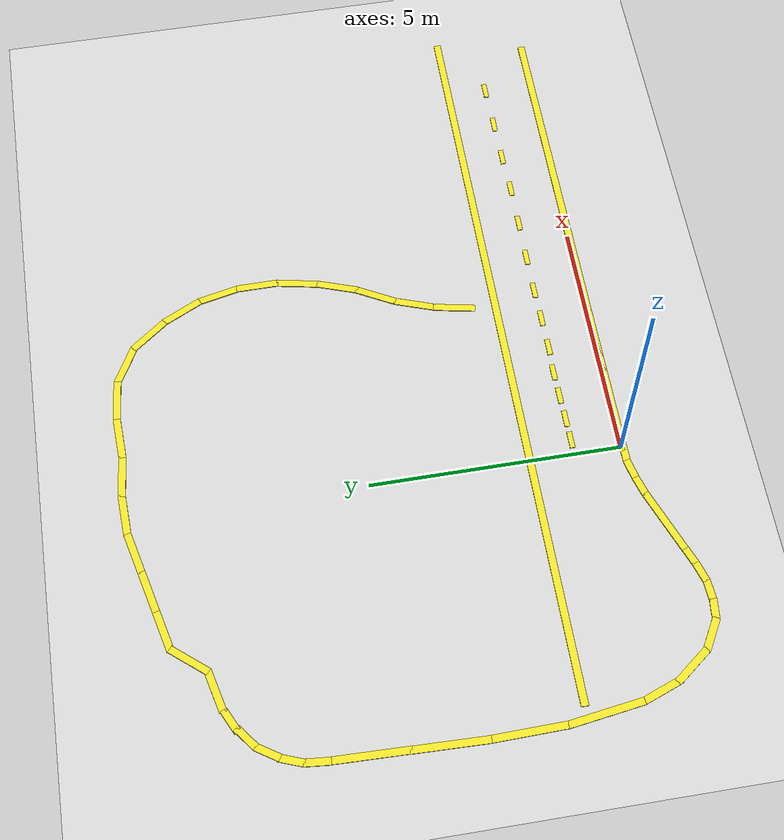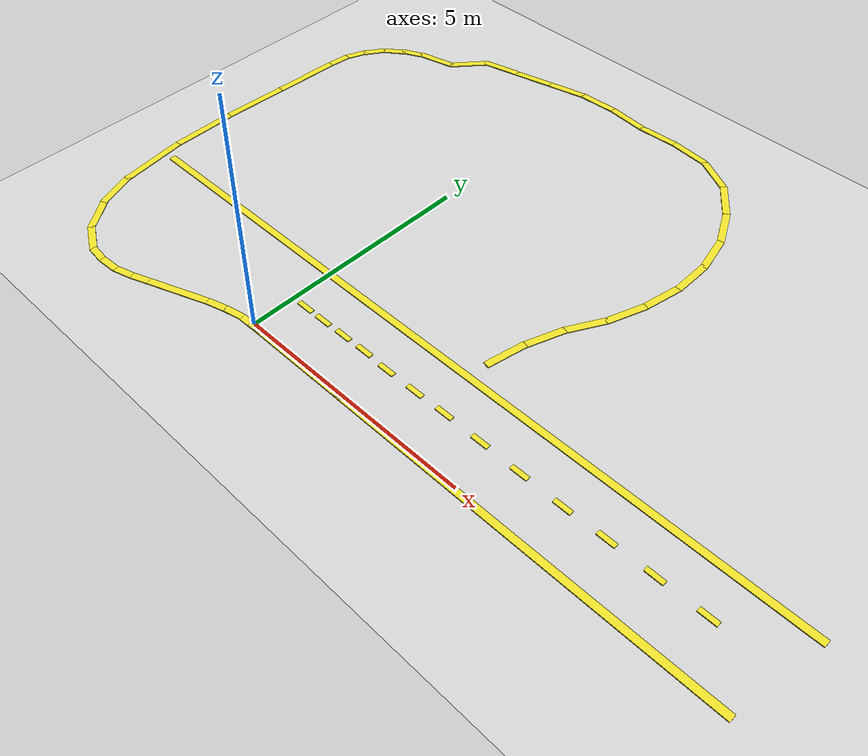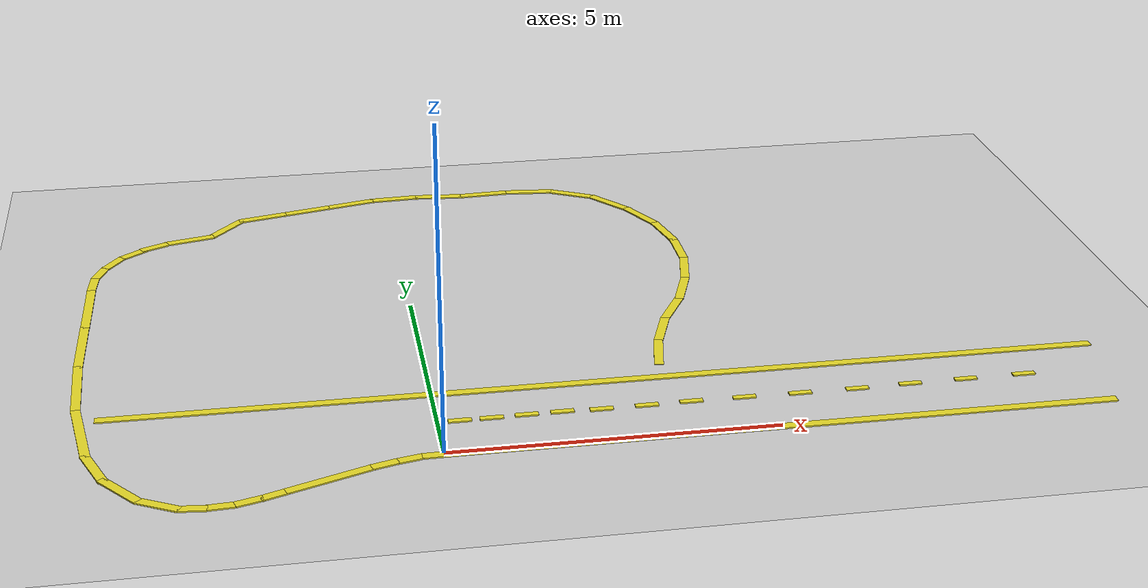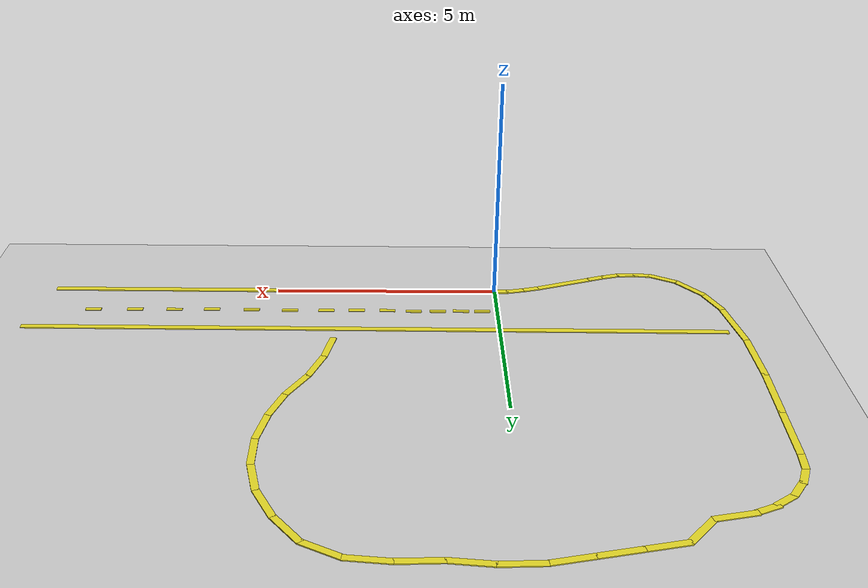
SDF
<sdf version="1.6">
 <world name="default">
  <model name="ground_plane">
   <static>1</static>
   <link name="link">
    <collision name="collision">
     <geometry><plane><normal>0 0 1</normal><size>100 100</size></plane></geometry>
     <surface>
      <contact><collide_bitmask>65535</collide_bitmask></contact>
      <friction><ode><mu>100</mu><mu2>50</mu2></ode></friction>
     </surface>
    </collision>
    <visual name="visual">
     <cast_shadows>0</cast_shadows>
     <geometry><plane><normal>0 0 1</normal><size>100 100</size></plane></geometry>
     <material>
      <script><uri>file://media/materials/scripts/gazebo.material</uri><name>Gazebo/Grey</name></script>
     </material>
    </visual>
   </link>
  </model>
  <model name="unit_box">
   <static>1</static>
   <pose>0.997641 -0.039919 4.6e-05 0 -0 0</pose>
   <link name="link">
    <gravity>0</gravity>
    <inertial>
     <mass>1</mass>
     <inertia>
      <ixx>0.166667</ixx>
      <ixy>0</ixy>
      <ixz>0</ixz>
      <iyy>0.166667</iyy>
      <iyz>0</iyz>
      <izz>0.166667</izz>
     </inertia>
    </inertial>
    <collision name="collision"><geometry><box><size>0 0 0</size></box></geometry></collision>
    <visual name="visual">
     <geometry><box><size>1.484 0.147 0.021</size></box></geometry>
     <material>
      <script><name>Gazebo/Yellow</name><uri>file://media/materials/scripts/gazebo.material</uri></script>
     </material>
    </visual>
   </link>
  </model>
  <model name="unit_box_clone">
   <static>1</static>
   <pose>2.43042 -0.038085 4.6e-05 0 -0 0</pose>
   <link name="link">
    <gravity>0</gravity>
    <inertial>
     <mass>1</mass>
     <inertia>
      <ixx>0.166667</ixx>
      <ixy>0</ixy>
      <ixz>0</ixz>
      <iyy>0.166667</iyy>
      <iyz>0</iyz>
      <izz>0.166667</izz>
     </inertia>
    </inertial>
    <collision name="collision"><geometry><box><size>0 0 0</size></box></geometry></collision>
    <visual name="visual">
     <geometry><box><size>1.484 0.147 0.021</size></box></geometry>
     <material>
      <script><name>Gazebo/Yellow</name><uri>file://media/materials/scripts/gazebo.material</uri></script>
     </material>
    </visual>
   </link>
  </model>
  <model name="unit_box_clone_clone_clone">
   <static>1</static>
   <pose>3.69131 2.65819 4.6e-05 0 0 -1.76385</pose>
   <link name="link">
    <gravity>0</gravity>
    <inertial>
     <mass>1</mass>
     <inertia>
      <ixx>0.166667</ixx>
      <ixy>0</ixy>
      <ixz>0</ixz>
      <iyy>0.166667</iyy>
      <iyz>0</iyz>
      <izz>0.166667</izz>
     </inertia>
    </inertial>
    <collision name="collision"><geometry><box><size>0 0 0</size></box></geometry></collision>
    <visual name="visual">
     <geometry><box><size>0.867362 0.147 0.021</size></box></geometry>
     <material>
      <script><name>Gazebo/Yellow</name><uri>file://media/materials/scripts/gazebo.material</uri></script>
     </material>
    </visual>
   </link>
  </model>
  <model name="unit_box_clone_clone_clone_clone">
   <static>1</static>
   <pose>3.909 3.44845 4.6e-05 0 0 -1.90739</pose>
   <link name="link">
    <gravity>0</gravity>
    <inertial>
     <mass>1</mass>
     <inertia>
      <ixx>0.166667</ixx>
      <ixy>0</ixy>
      <ixz>0</ixz>
      <iyy>0.166667</iyy>
      <iyz>0</iyz>
      <izz>0.166667</izz>
     </inertia>
    </inertial>
    <collision name="collision"><geometry><box><size>0 0 0</size></box></geometry></collision>
    <visual name="visual">
     <geometry><box><size>0.867362 0.147 0.021</size></box></geometry>
     <material>
      <script><name>Gazebo/Yellow</name><uri>file://media/materials/scripts/gazebo.material</uri></script>
     </material>
    </visual>
   </link>
  </model>
  <model name="unit_box_clone_clone_clone_clone_clone">
   <static>1</static>
   <pose>4.24694 4.20708 4.6e-05 0 0 -2.06699</pose>
   <link name="link">
    <gravity>0</gravity>
    <inertial>
     <mass>1</mass>
     <inertia>
      <ixx>0.166667</ixx>
      <ixy>0</ixy>
      <ixz>0</ixz>
      <iyy>0.166667</iyy>
      <iyz>0</iyz>
      <izz>0.166667</izz>
     </inertia>
    </inertial>
    <collision name="collision"><geometry><box><size>0 0 0</size></box></geometry></collision>
    <visual name="visual">
     <geometry><box><size>0.867362 0.147 0.021</size></box></geometry>
     <material>
      <script><name>Gazebo/Yellow</name><uri>file://media/materials/scripts/gazebo.material</uri></script>
     </material>
    </visual>
   </link>
  </model>
  <model name="unit_box_clone_clone_clone_clone_clone_0">
   <static>1</static>
   <pose>4.57975 4.95327 4.6e-05 0 0 -1.90739</pose>
   <link name="link">
    <gravity>0</gravity>
    <inertial>
     <mass>1</mass>
     <inertia>
      <ixx>0.166667</ixx>
      <ixy>0</ixy>
      <ixz>0</ixz>
      <iyy>0.166667</iyy>
      <iyz>0</iyz>
      <izz>0.166667</izz>
     </inertia>
    </inertial>
    <collision name="collision"><geometry><box><size>0 0 0</size></box></geometry></collision>
    <visual name="visual">
     <geometry><box><size>0.867362 0.147 0.021</size></box></geometry>
     <material>
      <script><name>Gazebo/Yellow</name><uri>file://media/materials/scripts/gazebo.material</uri></script>
     </material>
    </visual>
   </link>
  </model>
  <model name="unit_box_clone_clone_clone_clone_0">
   <static>1</static>
   <pose>4.798 5.76492 4.6e-05 0 0 -1.76385</pose>
   <link name="link">
    <gravity>0</gravity>
    <inertial>
     <mass>1</mass>
     <inertia>
      <ixx>0.166667</ixx>
      <ixy>0</ixy>
      <ixz>0</ixz>
      <iyy>0.166667</iyy>
      <iyz>0</iyz>
      <izz>0.166667</izz>
     </inertia>
    </inertial>
    <collision name="collision"><geometry><box><size>0 0 0</size></box></geometry></collision>
    <visual name="visual">
     <geometry><box><size>0.867362 0.147 0.021</size></box></geometry>
     <material>
      <script><name>Gazebo/Yellow</name><uri>file://media/materials/scripts/gazebo.material</uri></script>
     </material>
    </visual>
   </link>
  </model>
  <model name="unit_box_clone_clone_clone_clone_1">
   <static>1</static>
   <pose>4.87734 6.58817 4.6e-05 0 0 -1.56643</pose>
   <link name="link">
    <gravity>0</gravity>
    <inertial>
     <mass>1</mass>
     <inertia>
      <ixx>0.166667</ixx>
      <ixy>0</ixy>
      <ixz>0</ixz>
      <iyy>0.166667</iyy>
      <iyz>0</iyz>
      <izz>0.166667</izz>
     </inertia>
    </inertial>
    <collision name="collision"><geometry><box><size>0 0 0</size></box></geometry></collision>
    <visual name="visual">
     <geometry><box><size>0.867362 0.147 0.021</size></box></geometry>
     <material>
      <script><name>Gazebo/Yellow</name><uri>file://media/materials/scripts/gazebo.material</uri></script>
     </material>
    </visual>
   </link>
  </model>
  <model name="unit_box_clone_clone_clone_clone_1_clone">
   <static>1</static>
   <pose>4.78782 7.39334 4.6e-05 0 0 -1.35597</pose>
   <link name="link">
    <gravity>0</gravity>
    <inertial>
     <mass>1</mass>
     <inertia>
      <ixx>0.166667</ixx>
      <ixy>0</ixy>
      <ixz>0</ixz>
      <iyy>0.166667</iyy>
      <iyz>0</iyz>
      <izz>0.166667</izz>
     </inertia>
    </inertial>
    <collision name="collision"><geometry><box><size>0 0 0</size></box></geometry></collision>
    <visual name="visual">
     <geometry><box><size>0.867362 0.147 0.021</size></box></geometry>
     <material>
      <script><name>Gazebo/Yellow</name><uri>file://media/materials/scripts/gazebo.material</uri></script>
     </material>
    </visual>
   </link>
  </model>
  <model name="unit_box_clone_clone_clone_clone_1_clone_clone">
   <static>1</static>
   <pose>4.5092 8.18839 4.6e-05 0 0 -1.1136</pose>
   <link name="link">
    <gravity>0</gravity>
    <inertial>
     <mass>1</mass>
     <inertia>
      <ixx>0.166667</ixx>
      <ixy>0</ixy>
      <ixz>0</ixz>
      <iyy>0.166667</iyy>
      <iyz>0</iyz>
      <izz>0.166667</izz>
     </inertia>
    </inertial>
    <collision name="collision"><geometry><box><size>0 0 0</size></box></geometry></collision>
    <visual name="visual">
     <geometry><box><size>0.867362 0.147 0.021</size></box></geometry>
     <material>
      <script><name>Gazebo/Yellow</name><uri>file://media/materials/scripts/gazebo.material</uri></script>
     </material>
    </visual>
   </link>
  </model>
  <model name="unit_box_clone_clone_clone_clone_1_clone_clone_0">
   <static>1</static>
   <pose>4.05811 8.9062 4.6e-05 0 0 -0.916846</pose>
   <link name="link">
    <gravity>0</gravity>
    <inertial>
     <mass>1</mass>
     <inertia>
      <ixx>0.166667</ixx>
      <ixy>0</ixy>
      <ixz>0</ixz>
      <iyy>0.166667</iyy>
      <iyz>0</iyz>
      <izz>0.166667</izz>
     </inertia>
    </inertial>
    <collision name="collision"><geometry><box><size>0 0 0</size></box></geometry></collision>
    <visual name="visual">
     <geometry><box><size>0.867362 0.147 0.021</size></box></geometry>
     <material>
      <script><name>Gazebo/Yellow</name><uri>file://media/materials/scripts/gazebo.material</uri></script>
     </material>
    </visual>
   </link>
  </model>
  <model name="unit_box_clone_clone_clone_clone_1_clone_clone_0_clone">
   <static>1</static>
   <pose>3.43643 9.43481 4.6e-05 0 0 -0.497983</pose>
   <link name="link">
    <gravity>0</gravity>
    <inertial>
     <mass>1</mass>
     <inertia>
      <ixx>0.166667</ixx>
      <ixy>0</ixy>
      <ixz>0</ixz>
      <iyy>0.166667</iyy>
      <iyz>0</iyz>
      <izz>0.166667</izz>
     </inertia>
    </inertial>
    <collision name="collision"><geometry><box><size>0 0 0</size></box></geometry></collision>
    <visual name="visual">
     <geometry><box><size>0.867362 0.147 0.021</size></box></geometry>
     <material>
      <script><name>Gazebo/Yellow</name><uri>file://media/materials/scripts/gazebo.material</uri></script>
     </material>
    </visual>
   </link>
  </model>
  <model name="unit_box_clone_clone_clone_clone_1_clone_clone_0_clone_clone">
   <static>1</static>
   <pose>2.66546 9.67361 4.6e-05 0 0 -0.100911</pose>
   <link name="link">
    <gravity>0</gravity>
    <inertial>
     <mass>1</mass>
     <inertia>
      <ixx>0.166667</ixx>
      <ixy>0</ixy>
      <ixz>0</ixz>
      <iyy>0.166667</iyy>
      <iyz>0</iyz>
      <izz>0.166667</izz>
     </inertia>
    </inertial>
    <collision name="collision"><geometry><box><size>0 0 0</size></box></geometry></collision>
    <visual name="visual">
     <geometry><box><size>0.867362 0.147 0.021</size></box></geometry>
     <material>
      <script><name>Gazebo/Yellow</name><uri>file://media/materials/scripts/gazebo.material</uri></script>
     </material>
    </visual>
   </link>
  </model>
  <model name="unit_box_clone_clone_clone_clone_1_clone_clone_0_clone_clone_clone">
   <static>1</static>
   <pose>1.8162 9.6949 4.6e-05 0 -0 0.047714</pose>
   <link name="link">
    <gravity>0</gravity>
    <inertial>
     <mass>1</mass>
     <inertia>
      <ixx>0.166667</ixx>
      <ixy>0</ixy>
      <ixz>0</ixz>
      <iyy>0.166667</iyy>
      <iyz>0</iyz>
      <izz>0.166667</izz>
     </inertia>
    </inertial>
    <collision name="collision"><geometry><box><size>0 0 0</size></box></geometry></collision>
    <visual name="visual">
     <geometry><box><size>0.867362 0.147 0.021</size></box></geometry>
     <material>
      <script><name>Gazebo/Yellow</name><uri>file://media/materials/scripts/gazebo.material</uri></script>
     </material>
    </visual>
   </link>
  </model>
  <model name="unit_box_clone_clone_clone_clone_1_clone_clone_0_clone_clone_clone_0">
   <static>1</static>
   <pose>0.983846 9.71556 4.6e-05 0 0 -0.100911</pose>
   <link name="link">
    <gravity>0</gravity>
    <inertial>
     <mass>1</mass>
     <inertia>
      <ixx>0.166667</ixx>
      <ixy>0</ixy>
      <ixz>0</ixz>
      <iyy>0.166667</iyy>
      <iyz>0</iyz>
      <izz>0.166667</izz>
     </inertia>
    </inertial>
    <collision name="collision"><geometry><box><size>0 0 0</size></box></geometry></collision>
    <visual name="visual">
     <geometry><box><size>0.867362 0.147 0.021</size></box></geometry>
     <material>
      <script><name>Gazebo/Yellow</name><uri>file://media/materials/scripts/gazebo.material</uri></script>
     </material>
    </visual>
   </link>
  </model>
  <model name="unit_box_clone_clone_clone_clone_1_clone_clone_0_clone_clone_clone_clone">
   <static>1</static>
   <pose>0.151502 9.73907 4.6e-05 0 -0 0.047714</pose>
   <link name="link">
    <gravity>0</gravity>
    <inertial>
     <mass>1</mass>
     <inertia>
      <ixx>0.166667</ixx>
      <ixy>0</ixy>
      <ixz>0</ixz>
      <iyy>0.166667</iyy>
      <iyz>0</iyz>
      <izz>0.166667</izz>
     </inertia>
    </inertial>
    <collision name="collision"><geometry><box><size>0 0 0</size></box></geometry></collision>
    <visual name="visual">
     <geometry><box><size>0.867362 0.147 0.021</size></box></geometry>
     <material>
      <script><name>Gazebo/Yellow</name><uri>file://media/materials/scripts/gazebo.material</uri></script>
     </material>
    </visual>
   </link>
  </model>
  <model name="unit_box_clone_clone_clone_clone_1_clone_clone_0_clone_clone_clone_clone_clone">
   <static>1</static>
   <pose>-0.665159 9.62074 4.6e-05 0 -0 0.234321</pose>
   <link name="link">
    <gravity>0</gravity>
    <inertial>
     <mass>1</mass>
     <inertia>
      <ixx>0.166667</ixx>
      <ixy>0</ixy>
      <ixz>0</ixz>
      <iyy>0.166667</iyy>
      <iyz>0</iyz>
      <izz>0.166667</izz>
     </inertia>
    </inertial>
    <collision name="collision"><geometry><box><size>0 0 0</size></box></geometry></collision>
    <visual name="visual">
     <geometry><box><size>0.867362 0.147 0.021</size></box></geometry>
     <material>
      <script><name>Gazebo/Yellow</name><uri>file://media/materials/scripts/gazebo.material</uri></script>
     </material>
    </visual>
   </link>
  </model>
  <model name="unit_box_clone_clone_clone_clone_1_clone_clone_0_clone_clone_clone_clone_clone_clone">
   <static>1</static>
   <pose>-1.4834 9.42485 4.6e-05 0 -0 0.234321</pose>
   <link name="link">
    <gravity>0</gravity>
    <inertial>
     <mass>1</mass>
     <inertia>
      <ixx>0.166667</ixx>
      <ixy>0</ixy>
      <ixz>0</ixz>
      <iyy>0.166667</iyy>
      <iyz>0</iyz>
      <izz>0.166667</izz>
     </inertia>
    </inertial>
    <collision name="collision"><geometry><box><size>0 0 0</size></box></geometry></collision>
    <visual name="visual">
     <geometry><box><size>0.867362 0.147 0.021</size></box></geometry>
     <material>
      <script><name>Gazebo/Yellow</name><uri>file://media/materials/scripts/gazebo.material</uri></script>
     </material>
    </visual>
   </link>
  </model>
  <model name="unit_box_clone_clone_clone_clone_1_clone_clone_0_clone_clone_clone_clone_clone_clone_clone">
   <static>1</static>
   <pose>-2.28727 9.23298 4.6e-05 0 -0 0.234321</pose>
   <link name="link">
    <gravity>0</gravity>
    <inertial>
     <mass>1</mass>
     <inertia>
      <ixx>0.166667</ixx>
      <ixy>0</ixy>
      <ixz>0</ixz>
      <iyy>0.166667</iyy>
      <iyz>0</iyz>
      <izz>0.166667</izz>
     </inertia>
    </inertial>
    <collision name="collision"><geometry><box><size>0 0 0</size></box></geometry></collision>
    <visual name="visual">
     <geometry><box><size>0.867362 0.147 0.021</size></box></geometry>
     <material>
      <script><name>Gazebo/Yellow</name><uri>file://media/materials/scripts/gazebo.material</uri></script>
     </material>
    </visual>
   </link>
  </model>
  <model name="unit_box_clone_clone_clone_clone_1_clone_clone_0_clone_clone_clone_clone_clone_clone_clone_clone">
   <static>1</static>
   <pose>-2.94676 8.81367 4.6e-05 0 -0 0.877686</pose>
   <link name="link">
    <gravity>0</gravity>
    <inertial>
     <mass>1</mass>
     <inertia>
      <ixx>0.166667</ixx>
      <ixy>0</ixy>
      <ixz>0</ixz>
      <iyy>0.166667</iyy>
      <iyz>0</iyz>
      <izz>0.166667</izz>
     </inertia>
    </inertial>
    <collision name="collision"><geometry><box><size>0 0 0</size></box></geometry></collision>
    <visual name="visual">
     <geometry><box><size>0.867362 0.147 0.021</size></box></geometry>
     <material>
      <script><name>Gazebo/Yellow</name><uri>file://media/materials/scripts/gazebo.material</uri></script>
     </material>
    </visual>
   </link>
  </model>
  <model name="unit_box_clone_clone_clone_clone_1_clone_clone_0_clone_clone_clone_clone_clone_clone_clone_clone_0">
   <static>1</static>
   <pose>-3.59958 8.40441 4.6e-05 0 -0 0.234321</pose>
   <link name="link">
    <gravity>0</gravity>
    <inertial>
     <mass>1</mass>
     <inertia>
      <ixx>0.166667</ixx>
      <ixy>0</ixy>
      <ixz>0</ixz>
      <iyy>0.166667</iyy>
      <iyz>0</iyz>
      <izz>0.166667</izz>
     </inertia>
    </inertial>
    <collision name="collision"><geometry><box><size>0 0 0</size></box></geometry></collision>
    <visual name="visual">
     <geometry><box><size>0.867362 0.147 0.021</size></box></geometry>
     <material>
      <script><name>Gazebo/Yellow</name><uri>file://media/materials/scripts/gazebo.material</uri></script>
     </material>
    </visual>
   </link>
  </model>
  <model name="unit_box_clone_clone_clone_clone_1_clone_clone_0_clone_clone_clone_clone_clone_clone_clone_clone_0_clone">
   <static>1</static>
   <pose>-4.20841 8.192 4.6e-05 0 -0 0.445891</pose>
   <link name="link">
    <gravity>0</gravity>
    <inertial>
     <mass>1</mass>
     <inertia>
      <ixx>0.166667</ixx>
      <ixy>0</ixy>
      <ixz>0</ixz>
      <iyy>0.166667</iyy>
      <iyz>0</iyz>
      <izz>0.166667</izz>
     </inertia>
    </inertial>
    <collision name="collision"><geometry><box><size>0 0 0</size></box></geometry></collision>
    <visual name="visual">
     <geometry><box><size>0.508923 0.147 0.021</size></box></geometry>
     <material>
      <script><name>Gazebo/Yellow</name><uri>file://media/materials/scripts/gazebo.material</uri></script>
     </material>
    </visual>
   </link>
  </model>
  <model name="unit_box_clone_clone_clone_clone_1_clone_clone_0_clone_clone_clone_clone_clone_clone_clone_clone_0_clone_clone">
   <static>1</static>
   <pose>-4.55513 7.95405 4.6e-05 0 -0 0.651266</pose>
   <link name="link">
    <gravity>0</gravity>
    <inertial>
     <mass>1</mass>
     <inertia>
      <ixx>0.166667</ixx>
      <ixy>0</ixy>
      <ixz>0</ixz>
      <iyy>0.166667</iyy>
      <iyz>0</iyz>
      <izz>0.166667</izz>
     </inertia>
    </inertial>
    <collision name="collision"><geometry><box><size>0 0 0</size></box></geometry></collision>
    <visual name="visual">
     <geometry><box><size>0.508922 0.147 0.021</size></box></geometry>
     <material>
      <script><name>Gazebo/Yellow</name><uri>file://media/materials/scripts/gazebo.material</uri></script>
     </material>
    </visual>
   </link>
  </model>
  <model name="unit_box_clone_clone_clone_clone_1_clone_clone_0_clone_clone_clone_clone_clone_clone_clone_clone_0_clone_clone_clone">
   <static>1</static>
   <pose>-4.88655 7.60145 4.6e-05 0 -0 0.990233</pose>
   <link name="link">
    <gravity>0</gravity>
    <inertial>
     <mass>1</mass>
     <inertia>
      <ixx>0.166667</ixx>
      <ixy>0</ixy>
      <ixz>0</ixz>
      <iyy>0.166667</iyy>
      <iyz>0</iyz>
      <izz>0.166667</izz>
     </inertia>
    </inertial>
    <collision name="collision"><geometry><box><size>0 0 0</size></box></geometry></collision>
    <visual name="visual">
     <geometry><box><size>0.508922 0.147 0.021</size></box></geometry>
     <material>
      <script><name>Gazebo/Yellow</name><uri>file://media/materials/scripts/gazebo.material</uri></script>
     </material>
    </visual>
   </link>
  </model>
  <model name="unit_box_clone_clone_clone_clone_1_clone_clone_0_clone_clone_clone_clone_clone_clone_clone_clone_0_clone_clone_clone_0">
   <static>1</static>
   <pose>-5.09866 7.20761 4.6e-05 0 -0 1.20924</pose>
   <link name="link">
    <gravity>0</gravity>
    <inertial>
     <mass>1</mass>
     <inertia>
      <ixx>0.166667</ixx>
      <ixy>0</ixy>
      <ixz>0</ixz>
      <iyy>0.166667</iyy>
      <iyz>0</iyz>
      <izz>0.166667</izz>
     </inertia>
    </inertial>
    <collision name="collision"><geometry><box><size>0 0 0</size></box></geometry></collision>
    <visual name="visual">
     <geometry><box><size>0.508922 0.147 0.021</size></box></geometry>
     <material>
      <script><name>Gazebo/Yellow</name><uri>file://media/materials/scripts/gazebo.material</uri></script>
     </material>
    </visual>
   </link>
  </model>
  <model name="unit_box_clone_clone_clone_clone_1_clone_clone_0_clone_clone_clone_clone_clone_clone_clone_clone_0_clone_clone_clone_0_clone">
   <static>1</static>
   <pose>-5.20477 6.74859 4.6e-05 0 -0 1.47869</pose>
   <link name="link">
    <gravity>0</gravity>
    <inertial>
     <mass>1</mass>
     <inertia>
      <ixx>0.166667</ixx>
      <ixy>0</ixy>
      <ixz>0</ixz>
      <iyy>0.166667</iyy>
      <iyz>0</iyz>
      <izz>0.166667</izz>
     </inertia>
    </inertial>
    <collision name="collision"><geometry><box><size>0 0 0</size></box></geometry></collision>
    <visual name="visual">
     <geometry><box><size>0.508922 0.147 0.021</size></box></geometry>
     <material>
      <script><name>Gazebo/Yellow</name><uri>file://media/materials/scripts/gazebo.material</uri></script>
     </material>
    </visual>
   </link>
  </model>
  <model name="unit_box_clone_clone_clone_0">
   <static>1</static>
   <pose>-5.24424 5.78218 4.6e-05 0 0 -1.59906</pose>
   <link name="link">
    <gravity>0</gravity>
    <inertial>
     <mass>1</mass>
     <inertia>
      <ixx>0.166667</ixx>
      <ixy>0</ixy>
      <ixz>0</ixz>
      <iyy>0.166667</iyy>
      <iyz>0</iyz>
      <izz>0.166667</izz>
     </inertia>
    </inertial>
    <collision name="collision"><geometry><box><size>0 0 0</size></box></geometry></collision>
    <visual name="visual">
     <geometry><box><size>1.484 0.147 0.021</size></box></geometry>
     <material>
      <script><name>Gazebo/Yellow</name><uri>file://media/materials/scripts/gazebo.material</uri></script>
     </material>
    </visual>
   </link>
  </model>
  <model name="unit_box_clone_clone_clone_1">
   <static>1</static>
   <pose>-5.28895 4.3449 4.6e-05 0 0 -1.59906</pose>
   <link name="link">
    <gravity>0</gravity>
    <inertial>
     <mass>1</mass>
     <inertia>
      <ixx>0.166667</ixx>
      <ixy>0</ixy>
      <ixz>0</ixz>
      <iyy>0.166667</iyy>
      <iyz>0</iyz>
      <izz>0.166667</izz>
     </inertia>
    </inertial>
    <collision name="collision"><geometry><box><size>0 0 0</size></box></geometry></collision>
    <visual name="visual">
     <geometry><box><size>1.484 0.147 0.021</size></box></geometry>
     <material>
      <script><name>Gazebo/Yellow</name><uri>file://media/materials/scripts/gazebo.material</uri></script>
     </material>
    </visual>
   </link>
  </model>
  <model name="unit_box_clone_clone_clone_2">
   <static>1</static>
   <pose>-5.29331 2.92018 4.6e-05 0 0 -1.54914</pose>
   <link name="link">
    <gravity>0</gravity>
    <inertial>
     <mass>1</mass>
     <inertia>
      <ixx>0.166667</ixx>
      <ixy>0</ixy>
      <ixz>0</ixz>
      <iyy>0.166667</iyy>
      <iyz>0</iyz>
      <izz>0.166667</izz>
     </inertia>
    </inertial>
    <collision name="collision"><geometry><box><size>0 0 0</size></box></geometry></collision>
    <visual name="visual">
     <geometry><box><size>1.484 0.147 0.021</size></box></geometry>
     <material>
      <script><name>Gazebo/Yellow</name><uri>file://media/materials/scripts/gazebo.material</uri></script>
     </material>
    </visual>
   </link>
  </model>
  <model name="unit_box_clone_clone_clone_3">
   <static>1</static>
   <pose>-5.17391 1.45305 4.6e-05 0 0 -1.428</pose>
   <link name="link">
    <gravity>0</gravity>
    <inertial>
     <mass>1</mass>
     <inertia>
      <ixx>0.166667</ixx>
      <ixy>0</ixy>
      <ixz>0</ixz>
      <iyy>0.166667</iyy>
      <iyz>0</iyz>
      <izz>0.166667</izz>
     </inertia>
    </inertial>
    <collision name="collision"><geometry><box><size>0 0 0</size></box></geometry></collision>
    <visual name="visual">
     <geometry><box><size>1.484 0.147 0.021</size></box></geometry>
     <material>
      <script><name>Gazebo/Yellow</name><uri>file://media/materials/scripts/gazebo.material</uri></script>
     </material>
    </visual>
   </link>
  </model>
  <model name="unit_box_clone_clone_clone_clone_1_clone_clone_0_clone_0">
   <static>1</static>
   <pose>-4.56308 -0.301357 4.6e-05 0 0 -0.916846</pose>
   <link name="link">
    <gravity>0</gravity>
    <inertial>
     <mass>1</mass>
     <inertia>
      <ixx>0.166667</ixx>
      <ixy>0</ixy>
      <ixz>0</ixz>
      <iyy>0.166667</iyy>
      <iyz>0</iyz>
      <izz>0.166667</izz>
     </inertia>
    </inertial>
    <collision name="collision"><geometry><box><size>0 0 0</size></box></geometry></collision>
    <visual name="visual">
     <geometry><box><size>0.867362 0.147 0.021</size></box></geometry>
     <material>
      <script><name>Gazebo/Yellow</name><uri>file://media/materials/scripts/gazebo.material</uri></script>
     </material>
    </visual>
   </link>
  </model>
  <model name="unit_box_clone_clone_clone_clone_1_clone_clone_1">
   <static>1</static>
   <pose>-4.93502 0.366465 4.6e-05 0 0 -1.2144</pose>
   <link name="link">
    <gravity>0</gravity>
    <inertial>
     <mass>1</mass>
     <inertia>
      <ixx>0.166667</ixx>
      <ixy>0</ixy>
      <ixz>0</ixz>
      <iyy>0.166667</iyy>
      <iyz>0</iyz>
      <izz>0.166667</izz>
     </inertia>
    </inertial>
    <collision name="collision"><geometry><box><size>0 0 0</size></box></geometry></collision>
    <visual name="visual">
     <geometry><box><size>0.867362 0.147 0.021</size></box></geometry>
     <material>
      <script><name>Gazebo/Yellow</name><uri>file://media/materials/scripts/gazebo.material</uri></script>
     </material>
    </visual>
   </link>
  </model>
  <model name="unit_box_clone_clone_clone_clone_1_clone_clone_2">
   <static>1</static>
   <pose>-4.02929 -0.793404 4.6e-05 0 0 -0.519824</pose>
   <link name="link">
    <gravity>0</gravity>
    <inertial>
     <mass>1</mass>
     <inertia>
      <ixx>0.166667</ixx>
      <ixy>0</ixy>
      <ixz>0</ixz>
      <iyy>0.166667</iyy>
      <iyz>0</iyz>
      <izz>0.166667</izz>
     </inertia>
    </inertial>
    <collision name="collision"><geometry><box><size>0 0 0</size></box></geometry></collision>
    <visual name="visual">
     <geometry><box><size>0.685656 0.147 0.021</size></box></geometry>
     <material>
      <script><name>Gazebo/Yellow</name><uri>file://media/materials/scripts/gazebo.material</uri></script>
     </material>
    </visual>
   </link>
  </model>
  <model name="unit_box_clone_clone_clone_clone_1_clone_clone_3">
   <static>1</static>
   <pose>-3.55911 -0.969601 4.6e-05 0 0 -0.104456</pose>
   <link name="link">
    <gravity>0</gravity>
    <inertial>
     <mass>1</mass>
     <inertia>
      <ixx>0.166667</ixx>
      <ixy>0</ixy>
      <ixz>0</ixz>
      <iyy>0.166667</iyy>
      <iyz>0</iyz>
      <izz>0.166667</izz>
     </inertia>
    </inertial>
    <collision name="collision"><geometry><box><size>0 0 0</size></box></geometry></collision>
    <visual name="visual">
     <geometry><box><size>0.410498 0.147 0.021</size></box></geometry>
     <material>
      <script><name>Gazebo/Yellow</name><uri>file://media/materials/scripts/gazebo.material</uri></script>
     </material>
    </visual>
   </link>
  </model>
  <model name="unit_box_clone_clone_clone_clone_1_clone_clone_3_clone">
   <static>1</static>
   <pose>-3.18003 -0.974679 4.6e-05 0 -0 0.059799</pose>
   <link name="link">
    <gravity>0</gravity>
    <inertial>
     <mass>1</mass>
     <inertia>
      <ixx>0.166667</ixx>
      <ixy>0</ixy>
      <ixz>0</ixz>
      <iyy>0.166667</iyy>
      <iyz>0</iyz>
      <izz>0.166667</izz>
     </inertia>
    </inertial>
    <collision name="collision"><geometry><box><size>0 0 0</size></box></geometry></collision>
    <visual name="visual">
     <geometry><box><size>0.410498 0.147 0.021</size></box></geometry>
     <material>
      <script><name>Gazebo/Yellow</name><uri>file://media/materials/scripts/gazebo.material</uri></script>
     </material>
    </visual>
   </link>
  </model>
  <model name="unit_box_clone_clone_clone_clone_1_clone_clone_3_clone_0">
   <static>1</static>
   <pose>-2.79456 -0.904848 4.6e-05 0 -0 0.290973</pose>
   <link name="link">
    <gravity>0</gravity>
    <inertial>
     <mass>1</mass>
     <inertia>
      <ixx>0.166667</ixx>
      <ixy>0</ixy>
      <ixz>0</ixz>
      <iyy>0.166667</iyy>
      <iyz>0</iyz>
      <izz>0.166667</izz>
     </inertia>
    </inertial>
    <collision name="collision"><geometry><box><size>0 0 0</size></box></geometry></collision>
    <visual name="visual">
     <geometry><box><size>0.410498 0.147 0.021</size></box></geometry>
     <material>
      <script><name>Gazebo/Yellow</name><uri>file://media/materials/scripts/gazebo.material</uri></script>
     </material>
    </visual>
   </link>
  </model>
  <model name="unit_box_clone_clone_clone_clone_1_clone_clone_3_clone_1">
   <static>1</static>
   <pose>-2.44799 -0.786452 4.6e-05 0 -0 0.366797</pose>
   <link name="link">
    <gravity>0</gravity>
    <inertial>
     <mass>1</mass>
     <inertia>
      <ixx>0.166667</ixx>
      <ixy>0</ixy>
      <ixz>0</ixz>
      <iyy>0.166667</iyy>
      <iyz>0</iyz>
      <izz>0.166667</izz>
     </inertia>
    </inertial>
    <collision name="collision"><geometry><box><size>0 0 0</size></box></geometry></collision>
    <visual name="visual">
     <geometry><box><size>0.410498 0.147 0.021</size></box></geometry>
     <material>
      <script><name>Gazebo/Yellow</name><uri>file://media/materials/scripts/gazebo.material</uri></script>
     </material>
    </visual>
   </link>
  </model>
  <model name="unit_box_clone_clone_clone_clone_1_clone_clone_3_clone_1_clone">
   <static>1</static>
   <pose>-1.66124 -0.481987 4.6e-05 0 -0 0.366797</pose>
   <link name="link">
    <gravity>0</gravity>
    <inertial>
     <mass>1</mass>
     <inertia>
      <ixx>0.166667</ixx>
      <ixy>0</ixy>
      <ixz>0</ixz>
      <iyy>0.166667</iyy>
      <iyz>0</iyz>
      <izz>0.166667</izz>
     </inertia>
    </inertial>
    <collision name="collision"><geometry><box><size>0 0 0</size></box></geometry></collision>
    <visual name="visual">
     <geometry><box><size>1.34824 0.147 0.021</size></box></geometry>
     <material>
      <script><name>Gazebo/Yellow</name><uri>file://media/materials/scripts/gazebo.material</uri></script>
     </material>
    </visual>
   </link>
  </model>
  <model name="unit_box_clone_clone_clone_clone_1_clone_clone_3_clone_0_clone">
   <static>1</static>
   <pose>-0.867998 -0.191181 4.6e-05 0 -0 0.290973</pose>
   <link name="link">
    <gravity>0</gravity>
    <inertial>
     <mass>1</mass>
     <inertia>
      <ixx>0.166667</ixx>
      <ixy>0</ixy>
      <ixz>0</ixz>
      <iyy>0.166667</iyy>
      <iyz>0</iyz>
      <izz>0.166667</izz>
     </inertia>
    </inertial>
    <collision name="collision"><geometry><box><size>0 0 0</size></box></geometry></collision>
    <visual name="visual">
     <geometry><box><size>0.410498 0.147 0.021</size></box></geometry>
     <material>
      <script><name>Gazebo/Yellow</name><uri>file://media/materials/scripts/gazebo.material</uri></script>
     </material>
    </visual>
   </link>
  </model>
  <model name="unit_box_clone_clone_clone_clone_1_clone_clone_3_clone_0_clone_0">
   <static>1</static>
   <pose>-0.482687 -0.089854 4.6e-05 0 -0 0.227693</pose>
   <link name="link">
    <gravity>0</gravity>
    <inertial>
     <mass>1</mass>
     <inertia>
      <ixx>0.166667</ixx>
      <ixy>0</ixy>
      <ixz>0</ixz>
      <iyy>0.166667</iyy>
      <iyz>0</iyz>
      <izz>0.166667</izz>
     </inertia>
    </inertial>
    <collision name="collision"><geometry><box><size>0 0 0</size></box></geometry></collision>
    <visual name="visual">
     <geometry><box><size>0.410498 0.147 0.021</size></box></geometry>
     <material>
      <script><name>Gazebo/Yellow</name><uri>file://media/materials/scripts/gazebo.material</uri></script>
     </material>
    </visual>
   </link>
  </model>
  <model name="unit_box_clone_clone_clone_clone_1_clone_clone_3_clone_0_clone_1">
   <static>1</static>
   <pose>-0.015788 -0.045128 4.6e-05 0 -0 0.016746</pose>
   <link name="link">
    <gravity>0</gravity>
    <inertial>
     <mass>1</mass>
     <inertia>
      <ixx>0.166667</ixx>
      <ixy>0</ixy>
      <ixz>0</ixz>
      <iyy>0.166667</iyy>
      <iyz>0</iyz>
      <izz>0.166667</izz>
     </inertia>
    </inertial>
    <collision name="collision"><geometry><box><size>0 0 0</size></box></geometry></collision>
    <visual name="visual">
     <geometry><box><size>0.619261 0.147 0.021</size></box></geometry>
     <material>
      <script><name>Gazebo/Yellow</name><uri>file://media/materials/scripts/gazebo.material</uri></script>
     </material>
    </visual>
   </link>
  </model>
  <model name="unit_box_clone_1">
   <static>1</static>
   <pose>0.808652 0.937802 4.6e-05 0 -0 0</pose>
   <link name="link">
    <gravity>0</gravity>
    <inertial>
     <mass>1</mass>
     <inertia>
      <ixx>0.166667</ixx>
      <ixy>0</ixy>
      <ixz>0</ixz>
      <iyy>0.166667</iyy>
      <iyz>0</iyz>
      <izz>0.166667</izz>
     </inertia>
    </inertial>
    <collision name="collision"><geometry><box><size>0 0 0</size></box></geometry></collision>
    <visual name="visual">
     <geometry><box><size>0.355083 0.101757 0.021</size></box></geometry>
     <material>
      <script><name>Gazebo/Yellow</name><uri>file://media/materials/scripts/gazebo.material</uri></script>
     </material>
    </visual>
   </link>
  </model>
  <model name="unit_box_clone_1_clone">
   <static>1</static>
   <pose>0.333515 0.933861 4.6e-05 0 -0 0</pose>
   <link name="link">
    <gravity>0</gravity>
    <inertial>
     <mass>1</mass>
     <inertia>
      <ixx>0.166667</ixx>
      <ixy>0</ixy>
      <ixz>0</ixz>
      <iyy>0.166667</iyy>
      <iyz>0</iyz>
      <izz>0.166667</izz>
     </inertia>
    </inertial>
    <collision name="collision"><geometry><box><size>0 0 0</size></box></geometry></collision>
    <visual name="visual">
     <geometry><box><size>0.355083 0.101757 0.021</size></box></geometry>
     <material>
      <script><name>Gazebo/Yellow</name><uri>file://media/materials/scripts/gazebo.material</uri></script>
     </material>
    </visual>
   </link>
  </model>
  <model name="unit_box_clone_1_clone_0">
   <static>1</static>
   <pose>1.33406 0.950444 4.6e-05 0 -0 0</pose>
   <link name="link">
    <gravity>0</gravity>
    <inertial>
     <mass>1</mass>
     <inertia>
      <ixx>0.166667</ixx>
      <ixy>0</ixy>
      <ixz>0</ixz>
      <iyy>0.166667</iyy>
      <iyz>0</iyz>
      <izz>0.166667</izz>
     </inertia>
    </inertial>
    <collision name="collision"><geometry><box><size>0 0 0</size></box></geometry></collision>
    <visual name="visual">
     <geometry><box><size>0.355083 0.101757 0.021</size></box></geometry>
     <material>
      <script><name>Gazebo/Yellow</name><uri>file://media/materials/scripts/gazebo.material</uri></script>
     </material>
    </visual>
   </link>
  </model>
  <model name="unit_box_clone_1_clone_1">
   <static>1</static>
   <pose>1.87123 0.958651 4.6e-05 0 -0 0</pose>
   <link name="link">
    <gravity>0</gravity>
    <inertial>
     <mass>1</mass>
     <inertia>
      <ixx>0.166667</ixx>
      <ixy>0</ixy>
      <ixz>0</ixz>
      <iyy>0.166667</iyy>
      <iyz>0</iyz>
      <izz>0.166667</izz>
     </inertia>
    </inertial>
    <collision name="collision"><geometry><box><size>0 0 0</size></box></geometry></collision>
    <visual name="visual">
     <geometry><box><size>0.355083 0.101757 0.021</size></box></geometry>
     <material>
      <script><name>Gazebo/Yellow</name><uri>file://media/materials/scripts/gazebo.material</uri></script>
     </material>
    </visual>
   </link>
  </model>
  <model name="unit_box_clone_1_clone_2">
   <static>1</static>
   <pose>2.46279 0.936434 4.6e-05 0 -0 0</pose>
   <link name="link">
    <gravity>0</gravity>
    <inertial>
     <mass>1</mass>
     <inertia>
      <ixx>0.166667</ixx>
      <ixy>0</ixy>
      <ixz>0</ixz>
      <iyy>0.166667</iyy>
      <iyz>0</iyz>
      <izz>0.166667</izz>
     </inertia>
    </inertial>
    <collision name="collision"><geometry><box><size>0 0 0</size></box></geometry></collision>
    <visual name="visual">
     <geometry><box><size>0.355083 0.101757 0.021</size></box></geometry>
     <material>
      <script><name>Gazebo/Yellow</name><uri>file://media/materials/scripts/gazebo.material</uri></script>
     </material>
    </visual>
   </link>
  </model>
  <model name="unit_box_clone_1_clone_3">
   <static>1</static>
   <pose>3.1534 0.943869 4.6e-05 0 -0 0</pose>
   <link name="link">
    <gravity>0</gravity>
    <inertial>
     <mass>1</mass>
     <inertia>
      <ixx>0.166667</ixx>
      <ixy>0</ixy>
      <ixz>0</ixz>
      <iyy>0.166667</iyy>
      <iyz>0</iyz>
      <izz>0.166667</izz>
     </inertia>
    </inertial>
    <collision name="collision"><geometry><box><size>0 0 0</size></box></geometry></collision>
    <visual name="visual">
     <geometry><box><size>0.355083 0.101757 0.021</size></box></geometry>
     <material>
      <script><name>Gazebo/Yellow</name><uri>file://media/materials/scripts/gazebo.material</uri></script>
     </material>
    </visual>
   </link>
  </model>
  <model name="unit_box_clone_clone">
   <static>1</static>
   <pose>5.0528 -0.038616 4.6e-05 0 -0 0</pose>
   <link name="link">
    <gravity>0</gravity>
    <inertial>
     <mass>1</mass>
     <inertia>
      <ixx>0.166667</ixx>
      <ixy>0</ixy>
      <ixz>0</ixz>
      <iyy>0.166667</iyy>
      <iyz>0</iyz>
      <izz>0.166667</izz>
     </inertia>
    </inertial>
    <collision name="collision"><geometry><box><size>0 0 0</size></box></geometry></collision>
    <visual name="visual">
     <geometry><box><size>10.242 0.147 0.021</size></box></geometry>
     <material>
      <script><name>Gazebo/Yellow</name><uri>file://media/materials/scripts/gazebo.material</uri></script>
     </material>
    </visual>
   </link>
  </model>
  <model name="unit_box_clone_clone_0">
   <static>1</static>
   <pose>2.76313 1.81757 4.6e-05 0 -0 0</pose>
   <link name="link">
    <gravity>0</gravity>
    <inertial>
     <mass>1</mass>
     <inertia>
      <ixx>0.166667</ixx>
      <ixy>0</ixy>
      <ixz>0</ixz>
      <iyy>0.166667</iyy>
      <iyz>0</iyz>
      <izz>0.166667</izz>
     </inertia>
    </inertial>
    <collision name="collision"><geometry><box><size>0 0 0</size></box></geometry></collision>
    <visual name="visual">
     <geometry><box><size>15.5051 0.147 0.021</size></box></geometry>
     <material>
      <script><name>Gazebo/Yellow</name><uri>file://media/materials/scripts/gazebo.material</uri></script>
     </material>
    </visual>
   </link>
  </model>
  <model name="unit_box_clone_1_clone_3_clone">
   <static>1</static>
   <pose>3.83612 0.957637 4.6e-05 0 -0 0</pose>
   <link name="link">
    <gravity>0</gravity>
    <inertial>
     <mass>1</mass>
     <inertia>
      <ixx>0.166667</ixx>
      <ixy>0</ixy>
      <ixz>0</ixz>
      <iyy>0.166667</iyy>
      <iyz>0</iyz>
      <izz>0.166667</izz>
     </inertia>
    </inertial>
    <collision name="collision"><geometry><box><size>0 0 0</size></box></geometry></collision>
    <visual name="visual">
     <geometry><box><size>0.355083 0.101757 0.021</size></box></geometry>
     <material>
      <script><name>Gazebo/Yellow</name><uri>file://media/materials/scripts/gazebo.material</uri></script>
     </material>
    </visual>
   </link>
  </model>
  <model name="unit_box_clone_1_clone_3_clone_0">
   <static>1</static>
   <pose>4.65569 0.953413 4.6e-05 0 -0 0</pose>
   <link name="link">
    <gravity>0</gravity>
    <inertial>
     <mass>1</mass>
     <inertia>
      <ixx>0.166667</ixx>
      <ixy>0</ixy>
      <ixz>0</ixz>
      <iyy>0.166667</iyy>
      <iyz>0</iyz>
      <izz>0.166667</izz>
     </inertia>
    </inertial>
    <collision name="collision"><geometry><box><size>0 0 0</size></box></geometry></collision>
    <visual name="visual">
     <geometry><box><size>0.355083 0.101757 0.021</size></box></geometry>
     <material>
      <script><name>Gazebo/Yellow</name><uri>file://media/materials/scripts/gazebo.material</uri></script>
     </material>
    </visual>
   </link>
  </model>
  <model name="unit_box_clone_1_clone_3_clone_1">
   <static>1</static>
   <pose>5.52127 0.942772 4.6e-05 0 -0 0</pose>
   <link name="link">
    <gravity>0</gravity>
    <inertial>
     <mass>1</mass>
     <inertia>
      <ixx>0.166667</ixx>
      <ixy>0</ixy>
      <ixz>0</ixz>
      <iyy>0.166667</iyy>
      <iyz>0</iyz>
      <izz>0.166667</izz>
     </inertia>
    </inertial>
    <collision name="collision"><geometry><box><size>0 0 0</size></box></geometry></collision>
    <visual name="visual">
     <geometry><box><size>0.355083 0.101757 0.021</size></box></geometry>
     <material>
      <script><name>Gazebo/Yellow</name><uri>file://media/materials/scripts/gazebo.material</uri></script>
     </material>
    </visual>
   </link>
  </model>
  <model name="unit_box_clone_1_clone_3_clone_2">
   <static>1</static>
   <pose>6.41822 0.939364 4.6e-05 0 -0 0</pose>
   <link name="link">
    <gravity>0</gravity>
    <inertial>
     <mass>1</mass>
     <inertia>
      <ixx>0.166667</ixx>
      <ixy>0</ixy>
      <ixz>0</ixz>
      <iyy>0.166667</iyy>
      <iyz>0</iyz>
      <izz>0.166667</izz>
     </inertia>
    </inertial>
    <collision name="collision"><geometry><box><size>0 0 0</size></box></geometry></collision>
    <visual name="visual">
     <geometry><box><size>0.355083 0.101757 0.021</size></box></geometry>
     <material>
      <script><name>Gazebo/Yellow</name><uri>file://media/materials/scripts/gazebo.material</uri></script>
     </material>
    </visual>
   </link>
  </model>
  <model name="unit_box_clone_1_clone_3_clone_3">
   <static>1</static>
   <pose>7.2622 0.962803 4.6e-05 0 -0 0</pose>
   <link name="link">
    <gravity>0</gravity>
    <inertial>
     <mass>1</mass>
     <inertia>
      <ixx>0.166667</ixx>
      <ixy>0</ixy>
      <ixz>0</ixz>
      <iyy>0.166667</iyy>
      <iyz>0</iyz>
      <izz>0.166667</izz>
     </inertia>
    </inertial>
    <collision name="collision"><geometry><box><size>0 0 0</size></box></geometry></collision>
    <visual name="visual">
     <geometry><box><size>0.355083 0.101757 0.021</size></box></geometry>
     <material>
      <script><name>Gazebo/Yellow</name><uri>file://media/materials/scripts/gazebo.material</uri></script>
     </material>
    </visual>
   </link>
  </model>
  <model name="unit_box_clone_1_clone_3_clone_4">
   <static>1</static>
   <pose>8.15307 0.972588 4.6e-05 0 -0 0</pose>
   <link name="link">
    <gravity>0</gravity>
    <inertial>
     <mass>1</mass>
     <inertia>
      <ixx>0.166667</ixx>
      <ixy>0</ixy>
      <ixz>0</ixz>
      <iyy>0.166667</iyy>
      <iyz>0</iyz>
      <izz>0.166667</izz>
     </inertia>
    </inertial>
    <collision name="collision"><geometry><box><size>0 0 0</size></box></geometry></collision>
    <visual name="visual">
     <geometry><box><size>0.355083 0.101757 0.021</size></box></geometry>
     <material>
      <script><name>Gazebo/Yellow</name><uri>file://media/materials/scripts/gazebo.material</uri></script>
     </material>
    </visual>
   </link>
  </model>
  <model name="unit_box_clone_1_clone_3_clone_5">
   <static>1</static>
   <pose>9.09092 0.983973 4.6e-05 0 -0 0</pose>
   <link name="link">
    <gravity>0</gravity>
    <inertial>
     <mass>1</mass>
     <inertia>
      <ixx>0.166667</ixx>
      <ixy>0</ixy>
      <ixz>0</ixz>
      <iyy>0.166667</iyy>
      <iyz>0</iyz>
      <izz>0.166667</izz>
     </inertia>
    </inertial>
    <collision name="collision"><geometry><box><size>0 0 0</size></box></geometry></collision>
    <visual name="visual">
     <geometry><box><size>0.355083 0.101757 0.021</size></box></geometry>
     <material>
      <script><name>Gazebo/Yellow</name><uri>file://media/materials/scripts/gazebo.material</uri></script>
     </material>
    </visual>
   </link>
  </model>
 </world>
</sdf>
